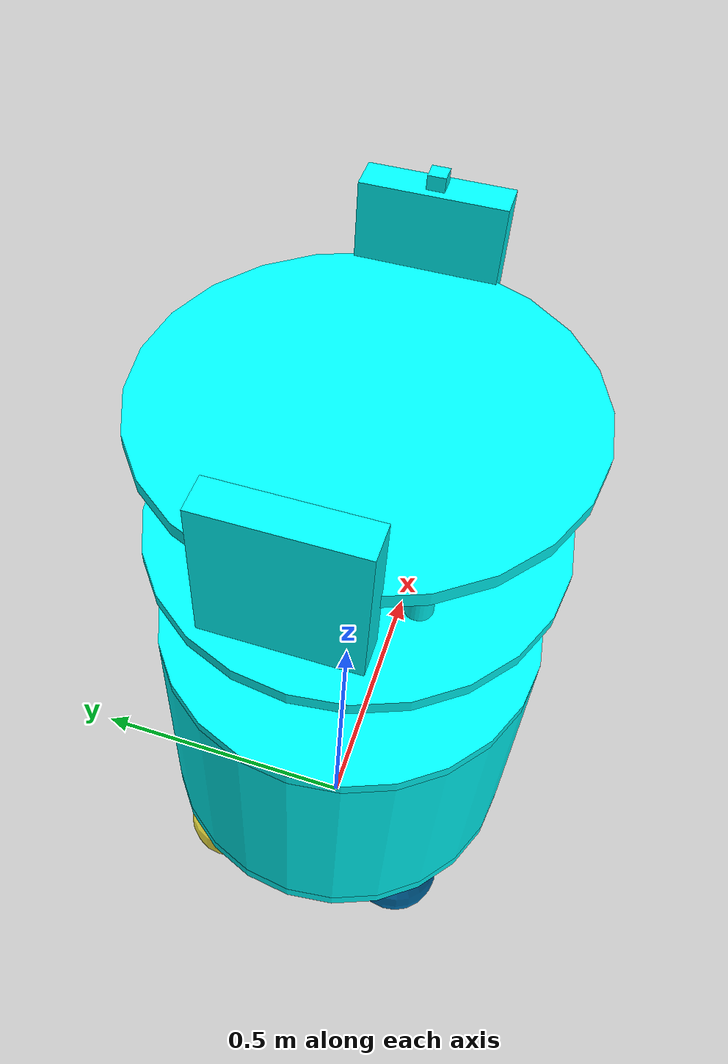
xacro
<?xml version="1.0"?>
<robot name="garcom" xmlns:xacro="http://www.ros.org/wiki/xacro">

  <xacro:include filename="macros/link_geometry.urdf.xacro" />
  <xacro:include filename="macros/properties.urdf.xacro" />

  <xacro:include filename="macros/parts/base.urdf.xacro" />
  <xacro:include filename="macros/parts/camera.urdf.xacro" />
  <xacro:include filename="macros/parts/holder.urdf.xacro" />
  <xacro:include filename="macros/parts/plate.urdf.xacro" />
  <xacro:include filename="macros/parts/screen.urdf.xacro" />
  <xacro:include filename="macros/parts/wheel.urdf.xacro" />

  <xacro:include filename="simulation/gazebo_base.urdf.xacro" />
  <xacro:include filename="simulation/gazebo_laser.urdf.xacro" />
  <xacro:include filename="simulation/gazebo_camera.urdf.xacro" />
  <xacro:include filename="simulation/imu.urdf.xacro"/>

  <!-- Robot -->

  <xacro:base name="base_link"/>
  <xacro:plate name="plate_bottom"/>
  <xacro:plate name="plate_middle"/>
  <xacro:plate name="plate_top"/>
  <xacro:holder name="holder1" parent="plate_bottom" child="plate_middle" z="${holder_z}"/>
  <xacro:holder name="holder2" parent="plate_middle" child="plate_top" z="${holder_z}"/>
  <xacro:screen name="screen_front" parent="plate_top" x="0.3" y="0" z="0.02"/>
  <xacro:screen name="screen_back" parent="plate_top" x="-0.3" y="0" z="0.02"/>
  <xacro:camera name="camera_frente" parent="screen_front" x="0" y="0" z="0.11"/>
  <xacro:wheel name="left_wheel">
    <origin xyz="-0.16 0.16 ${-wheel_radius -(laser_length/2)}" rpy="0 0 0"/>
  </xacro:wheel>
  <xacro:wheel name="right_wheel">
    <origin xyz="-0.16 -0.16 ${-wheel_radius -(laser_length/2)}" rpy="0 0 0"/>
  </xacro:wheel>
  <xacro:wheel name="front_wheel">
    <origin xyz="0.16 0.16 ${-wheel_radius -(laser_length/2)}" rpy="0 0 0"/>
  </xacro:wheel>
  <xacro:wheel name="front_wheel2">
    <origin xyz="0.16 -0.16 ${-wheel_radius -(laser_length/2)}" rpy="0 0 0"/>
  </xacro:wheel>

  <!-- IMU -->
  <xacro:imu name="imu" parent="base_link">
    <origin xyz="0.0 0.0 0.055" rpy="0 0 0"/>
  </xacro:imu>

  <!-- Plugins -->
  <xacro:gazebo_base/>
  <xacro:gazebo_laser reference="base_scan"/>
  <xacro:gazebo_camera reference="camera_frente"/>

</robot>

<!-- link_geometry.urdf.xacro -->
<robot xmlns:xacro="http://ros.org/wiki/xacro">

      <material name="Cyan">
        <color rgba="0 1.0 1.0 1.0"/>
      </material>

  <!-- box -->
  <xacro:macro name="create_box" params="m x y z *origin">
    <visual>
      <xacro:insert_block name="origin"/>
      <geometry>
        <box size="${x} ${y} ${z}"/>
      </geometry>
      <material name="Cyan"/>
    </visual>
    <collision>
      <xacro:insert_block name="origin"/>
      <geometry>
        <box size="${x} ${y} ${z}"/>
      </geometry>
    </collision>
    <inertial>
      <mass value="${m}"/>
      <inertia
        ixx="${1/12*m*(y*y+z*z)}" ixy="0.0" ixz="0.0"
        iyy="${1/12*m*(x*x+z*z)}" iyz="0.0"
        izz="${1/12*m*(x*x+y*y)}"/>
    </inertial>
  </xacro:macro>

  <!-- cylinder -->
  <xacro:macro name="create_cylinder" params="m r l *origin">
    <visual>
      <xacro:insert_block name="origin"/>
      <geometry>
        <cylinder radius="${r}" length="${l}"/>
      </geometry>
      <material name="Cyan"/>
    </visual>
    <collision>
      <xacro:insert_block name="origin"/>
      <geometry>
        <cylinder radius="${r}" length="${l}"/>
      </geometry>
    </collision>
    <inertial>
      <mass value="${m}"/>
      <inertia
        ixx="${1/12*m*(3*r*r+l*l)}" ixy="0.0" ixz="0.0"
        iyy="${1/12*m*(3*r*r+l*l)}" iyz="0.0"
        izz="${1/2*(m*r*r)}"/>
    </inertial>
  </xacro:macro>

  <!-- sphere -->
  <xacro:macro name="create_sphere" params="m r *origin">
    <visual>
      <xacro:insert_block name="origin" />
      <geometry>
        <sphere radius="${r}"/>
      </geometry>
    </visual>
    <collision>
      <xacro:insert_block name="origin" />
      <geometry>
        <sphere radius="${r}"/>
      </geometry>
    </collision>
    <inertial>
      <mass value="${m}"/>
      <inertia
        ixx="${(2/5)*m*r*r}" ixy="0.0" ixz="0.0"
        iyy="${(2/5)*m*r*r}" iyz="0.0"
        izz="${(2/5)*m*r*r}"/>
    </inertial>
  </xacro:macro>

</robot>

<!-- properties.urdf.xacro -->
<robot xmlns:xacro="http://ros.org/wiki/xacro">

  <xacro:property name="PI"             value="3.14159265" />

  <xacro:property name="robot_mass"      value="10" />

  <xacro:property name="body_mass"      value="${10 * robot_mass/100}" />
  <xacro:property name="body_radius"    value="0.3" />
  <xacro:property name="body_length"    value="0.4" />

  <xacro:property name="laser_mass"      value="${50 * robot_mass/100}" />
  <xacro:property name="laser_radius"    value="${body_radius}" />
  <xacro:property name="laser_length"    value="0.025" />

  <xacro:property name="holder_mass"      value="${5 * robot_mass/100}" />
  <xacro:property name="holder_radius"    value="0.02" />
  <xacro:property name="holder_length"    value="0.2" />
  <xacro:property name="holder_xy"        value="0.12" />
  <xacro:property name="holder_z"         value="0.11" />

  <xacro:property name="plate_mass"      value="${4 * robot_mass/100}" />
  <xacro:property name="plate_radius"    value="${body_radius}" />
  <xacro:property name="plate_length"    value="0.02" />

  <xacro:property name="screen_mass"      value="${1 * robot_mass/100}" />
  <xacro:property name="screen_x"         value="0.05" />
  <xacro:property name="screen_y"         value="0.2" />
  <xacro:property name="screen_z"         value="0.2" />

  <xacro:property name="camera_mass"      value="${1 * robot_mass/100}" />
  <xacro:property name="camera_x"         value="0.025" />
  <xacro:property name="camera_y"         value="0.025" />
  <xacro:property name="camera_z"         value="0.02" />

  <xacro:property name="wheel_mass"      value="${5 * robot_mass/100}" />
  <xacro:property name="wheel_radius"    value="${body_radius/4}" />

</robot>

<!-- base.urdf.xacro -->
<robot xmlns:xacro="http://ros.org/wiki/xacro">

  <xacro:macro name="base" params="name">

    <!-- link: base_footprint -->
    <link name='base_footprint'/>

    <!-- joint: base_footprint -> base -->
    <joint name="joint_base_footprint_to_base" type="fixed">
      <origin xyz="0 0 ${(wheel_radius)*2 + (laser_length)}" rpy="0 0 0"/>
      <parent link="base_footprint"/>
      <child link="base_scan"/>
    </joint>

    <!-- link: base -->
    <link name="${name}">
      <xacro:create_cylinder m="${body_mass}" r="${body_radius}" l="${body_length}">
        <origin xyz="0 0 0" rpy="0 0 0"/>
      </xacro:create_cylinder>
    </link>

  <joint name="base_to_laser" type="fixed">
    <origin xyz="0 0 0.2125" rpy="0 0 0"/>
    <parent link="base_scan"/>
    <child link="${name}"/>
  </joint>
  <link name="base_scan">
    <xacro:create_cylinder m="${laser_mass}" r="${laser_radius}" l="${laser_length}">
        <origin xyz="0 0 0" rpy="0 0 0"/>
    </xacro:create_cylinder>
  </link>

  <joint name="base_to_plate" type="fixed">
    <origin xyz="0 0 0.21" rpy="0 0 0"/>
    <parent link="${name}"/>
    <child link="plate_bottom"/>
  </joint>

  </xacro:macro>

</robot>

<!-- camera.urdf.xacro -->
<robot xmlns:xacro="http://ros.org/wiki/xacro">

  <xacro:macro name="camera" params="name parent x y z">

    <!-- joint: base_footprint -> base -->
    <joint name="${parent}_to_${name}" type="fixed">
      <origin xyz="${x} ${y} ${z}" rpy="0 0 0"/>
      <parent link="${parent}"/>
      <child link="${name}"/>
    </joint>

    <!-- link: base -->
    <link name="${name}">
      <xacro:create_box m="${camera_mass}" x="${camera_x}" y="${camera_y}" z="${camera_z}">
        <origin xyz="0 0 0" rpy="0 0 0"/>
      </xacro:create_box>
    </link>

  </xacro:macro>

</robot>

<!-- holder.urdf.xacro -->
<robot xmlns:xacro="http://ros.org/wiki/xacro">

  <xacro:macro name="holder" params="name parent child z">

    <!-- joint: plate -> holder -->
      <joint name="${parent}_to_${name}" type="fixed">
        <origin xyz="0 0 ${z}" rpy="0 0 0"/>
        <parent link="${parent}"/>
        <child link="${name}"/>
      </joint>

      <joint name="${name}_to_${child}" type="fixed">
        <origin xyz="0 0 ${z}" rpy="0 0 0"/>
        <parent link="${name}"/>
        <child link="${child}"/>
      </joint>

    <!-- link: base -->
    <link name="${name}">
      <xacro:create_cylinder m="${holder_mass}" r="${holder_radius}" l="${holder_length}">
        <origin xyz="${holder_xy} ${holder_xy} 0" rpy="0 0 0"/>
      </xacro:create_cylinder>
      <xacro:create_cylinder m="${holder_mass}" r="${holder_radius}" l="${holder_length}">
        <origin xyz="${-1*holder_xy} ${-1*holder_xy} 0" rpy="0 0 0"/>
      </xacro:create_cylinder>
      <xacro:create_cylinder m="${holder_mass}" r="${holder_radius}" l="${holder_length}">
        <origin xyz="${holder_xy} ${-1*holder_xy} 0" rpy="0 0 0"/>
      </xacro:create_cylinder>
      <xacro:create_cylinder m="${holder_mass}" r="${holder_radius}" l="${holder_length}">
        <origin xyz="${-1*holder_xy} ${holder_xy} 0" rpy="0 0 0"/>
      </xacro:create_cylinder>
    </link>

  </xacro:macro>

</robot>

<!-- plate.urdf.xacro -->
<robot xmlns:xacro="http://ros.org/wiki/xacro">

  <xacro:macro name="plate" params="name">

    <!-- link: base -->
    <link name="${name}">
      <xacro:create_cylinder m="${plate_mass}" r="${plate_radius}" l="${plate_length}">
        <origin xyz="0 0 0" rpy="0 0 0"/>
      </xacro:create_cylinder>
    </link>

  </xacro:macro>

</robot>

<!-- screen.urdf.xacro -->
<robot xmlns:xacro="http://ros.org/wiki/xacro">

  <xacro:macro name="screen" params="name parent x y z">

    <!-- joint: screen -> plate -->
    <joint name="plate_top_to_${name}" type="fixed">
      <origin xyz="${x} ${y} ${z}" rpy="0 0 0"/>
      <parent link="${parent}"/>
      <child link="${name}"/>
    </joint>

    <!-- link: base -->
    <link name="${name}">
      <xacro:create_box m="${screen_mass}" x="${screen_x}" y="${screen_y}" z="${screen_z}">
        <origin xyz="0 0 0" rpy="0 0 0"/>
      </xacro:create_box>
    </link>

  </xacro:macro>

</robot>

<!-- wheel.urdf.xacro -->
<robot xmlns:xacro="http://ros.org/wiki/xacro">

  <xacro:macro name="wheel" params="name *origin">

    <!-- joint: parent_base -> wheel -->
    <joint name="base_link_to_${name}" type="continuous">
      <xacro:insert_block name="origin" />
      <parent link="base_scan"/>
      <child link="${name}"/>
      <axis xyz="0 0 1"/>
    </joint>

    <!-- link: wheel -->
    <link name="${name}">
      <origin xyz="0 0 0" rpy="${-PI/2} 0 0"/>
      <xacro:create_sphere m="${wheel_mass}" r="${wheel_radius}">
        <origin xyz="0 0 0" rpy="0 0 0"/>
      </xacro:create_sphere>
    </link>

  </xacro:macro>

</robot>

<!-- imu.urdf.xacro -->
<robot xmlns:xacro="http://ros.org/wiki/xacro">

  <xacro:macro name="imu" params="name parent *origin">

    <joint name="${parent}_to_${name}" type="fixed">
        <xacro:insert_block name="origin" />
        <parent link="${parent}"/>
        <child link="${name}"/>
    </joint>

    <link name="${name}">
      <visual>
        <geometry>
          <box size="0.2 0.2 0.05"/>
        </geometry>
      </visual>
      <collision>
        <geometry>
          <box size="0.2 0.2 0.05"/>
        </geometry>
      </collision>
      <inertial>
        <mass value="1e-5" />
        <origin xyz="0 0 0" rpy="0 0 0"/>
        <inertia ixx="1e-6" ixy="0" ixz="0" iyy="1e-6" iyz="0" izz="1e-6" />
      </inertial>
    </link>

    <gazebo reference="${name}">
      <gravity>true</gravity>
      <sensor name="imu_sensor" type="imu">
        <always_on>true</always_on>
        <update_rate>100</update_rate>
        <visualize>true</visualize>
        <pose>0 0 0 0 0 0</pose>
        <plugin filename="libgazebo_ros_imu_sensor.so" name="imu_plugin">
          <ros>
            <!-- publish to /imu/data -->
            <remapping>~/out:=imu</remapping>
          </ros>
          <topicName>${name}</topicName>
          <bodyName>${name}</bodyName>
          <updateRateHZ>50.0</updateRateHZ>
          <gaussianNoise>0.005</gaussianNoise>
          <xyzOffset>0 0 0</xyzOffset>
          <rpyOffset>0 0 0</rpyOffset>
          <frameName>${name}</frameName>
        </plugin>
      </sensor>
    </gazebo>

  </xacro:macro>

</robot>
